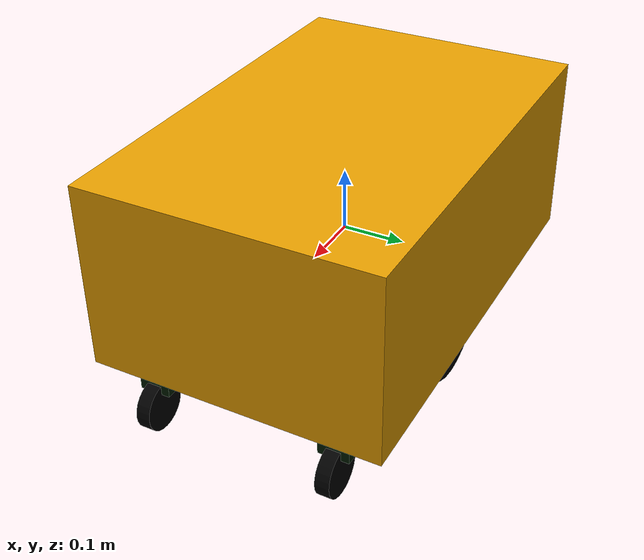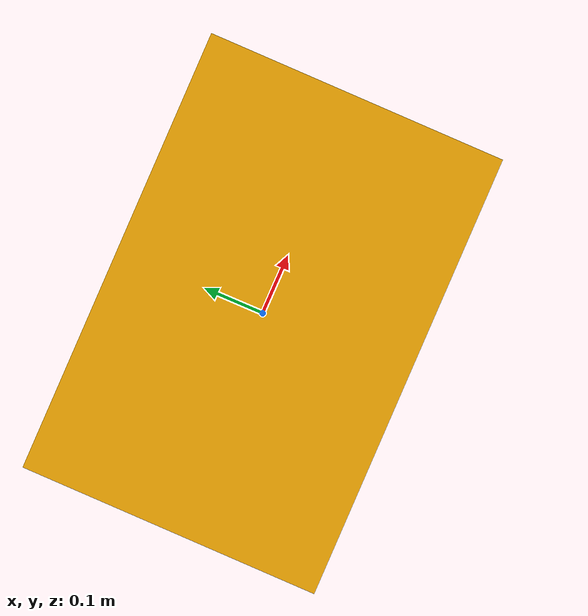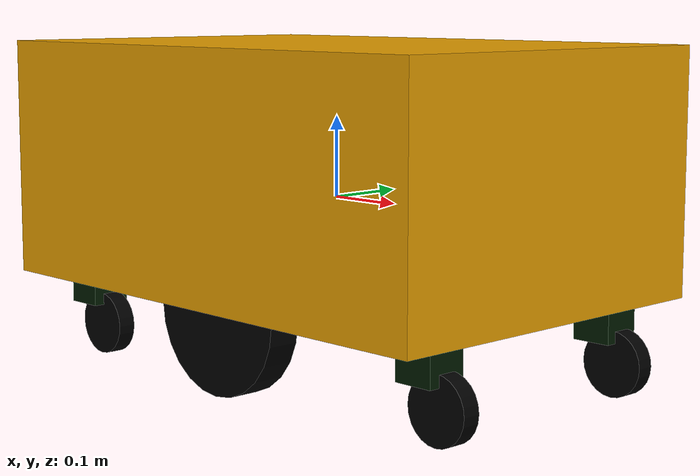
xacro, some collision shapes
<?xml version="1.0"?>
<robot xmlns:xacro="http://www.ros.org/wiki/xacro">

    <link name="base_link">
        <visual>
            <geometry>
                <mesh filename="file://$(find moborobo)/meshes/moborobo_short.stl" scale="1 1 1"/>
            </geometry>
        </visual>
        <collision>
            <geometry>
                <box size=".70 .470 .3"/>
            </geometry>
            <origin xyz="0 0 0.04" rpy="0 0 0" />
        </collision>
        <inertial>
            <mass value="20.0"/>
            <inertia ixx="0.51816" ixy="0" ixz="0" iyy="0.966664" iyz="0.0" izz="1.18484"/>
            <origin xyz="0 0 0.06" rpy="0 0 0" />
        </inertial>
    </link>

    <joint name="base_footprint_joint" type="fixed">
        <parent link="base_link"/>
        <child link="base_footprint"/>
        <origin xyz="0 0 0" rpy="0 0 0"/>
    </joint>

    <link name="base_footprint">
    </link>

    <link name="front_caster_1">
        <visual>
            <geometry>
                <box size="0.05 0.05 0.05"/>
            </geometry>
            <material name="green">
                <color rgba="0.0 0.1 0.0 1"/>
            </material>
        </visual>
        <collision>
            <geometry>
                <box size="0.05 0.05 0.05"/>
            </geometry>
        </collision>
        <inertial>
            <mass value="0.5"/>
            <inertia ixx="0.000208332" ixy="0" ixz="0" iyy="0.000208332" iyz="0.0" izz="0.000208332"/>

        </inertial>
    </link>
    <joint name="front_caster_1_joint" type="continuous">
       <axis xyz="0.0 0.0 1"/>
       <parent link="base_link"/>
       <child link="front_caster_1"/>
       <origin xyz="-0.300 0.150 -0.130" rpy="0.0 0.0 0.0"/>
    </joint>

    <link name="front_wheel_1">
        <visual>
            <geometry>
                <cylinder radius="0.04" length="0.0228"/>
            </geometry>
            <material name="black">

            </material>

        </visual>
        <collision>
            <geometry>
                <cylinder radius="0.04" length="0.0228"/>
            </geometry>
        </collision>
        <inertial>
            <mass value="0.5"/>
            <inertia ixx="0.00022166" ixy="0" ixz="0" iyy="0.00022166" iyz="0.0" izz="0.0004"/>
        </inertial>
    </link>

    <joint name="front_wheel_1_joint" type="continuous">
        <axis xyz="0.0 0.0 1"/>
        <parent link="front_caster_1"/>
        <child link="front_wheel_1"/>
        <origin xyz="0.02 0.0 -0.05" rpy="-1.5708 0.0 0.0"/>

    </joint>

    <link name="front_caster_2">
        <visual>
            <geometry>
                <box size="0.05 0.05 0.05"/>
            </geometry>
            <material name="green">
                <color rgba="0.0 0.1 0.0 1"/>
            </material>
        </visual>
        <collision>
            <geometry>
                <box size="0.05 0.05 0.05"/>
            </geometry>
        </collision>
        <inertial>
            <mass value="0.5"/>
            <inertia ixx="0.000208332" ixy="0" ixz="0" iyy="0.000208332" iyz="0.0" izz="0.000208332"/>
        </inertial>
    </link>
    <joint name="front_caster_2_joint" type="continuous">
       <axis xyz="0.0 0.0 1"/>
       <parent link="base_link"/>
       <child link="front_caster_2"/>
       <origin xyz="-0.300 -0.150 -0.130" rpy="0.0 0.0 0.0"/>
    </joint>

    <link name="front_wheel_2">
        <visual>
            <geometry>
                <cylinder radius="0.04" length="0.0228"/>
            </geometry>
            <material name="black">

            </material>

        </visual>
        <collision>
            <geometry>
                <cylinder radius="0.04" length="0.0228"/>
            </geometry>
        </collision>
        <inertial>
            <mass value="0.5"/>
            <inertia ixx="0.00022166" ixy="0" ixz="0" iyy="0.00022166" iyz="0.0" izz="0.0004"/>
        </inertial>
    </link>

    <joint name="front_wheel_2_joint" type="continuous">
        <axis xyz="0.0 0.0 1"/>
        <parent link="front_caster_2"/>
        <child link="front_wheel_2"/>
        <origin xyz="0.02 0.0 -0.05" rpy="-1.5708 0.0 0.0"/>

    </joint>

    <link name="back_caster_1">
        <visual>
            <geometry>
                <box size="0.05 0.05 0.05"/>
            </geometry>
            <material name="green">
                <color rgba="0.0 0.1 0.0 1"/>
            </material>
        </visual>
        <collision>
            <geometry>
                <box size="0.05 0.05 0.05"/>
            </geometry>
        </collision>
        <inertial>
            <mass value="0.5"/>
            <inertia ixx="0.000208332" ixy="0" ixz="0" iyy="0.000208332" iyz="0.0" izz="0.000208332"/>
        </inertial>
    </link>
    <joint name="back_caster_1_joint" type="continuous">
       <axis xyz="0.0 0.0 1"/>
       <parent link="base_link"/>
       <child link="back_caster_1"/>
       <origin xyz="0.300 0.150 -0.130" rpy="0.0 0.0 0.0"/>
    </joint>

    <link name="back_wheel_1">
        <visual>
            <geometry>
                <cylinder radius="0.04" length="0.0228"/>
            </geometry>
            <material name="black">

            </material>

        </visual>
        <collision>
            <geometry>
                <cylinder radius="0.04" length="0.0228"/>
            </geometry>
        </collision>
        <inertial>
            <mass value="0.5"/>
            <inertia ixx="0.00022166" ixy="0" ixz="0" iyy="0.00022166" iyz="0.0" izz="0.0004"/>
        </inertial>
    </link>

    <joint name="back_wheel_1_joint" type="continuous">
        <axis xyz="0.0 0.0 1"/>
        <parent link="back_caster_1"/>
        <child link="back_wheel_1"/>
        <origin xyz="0.02 0.0 -0.05" rpy="-1.5708 0.0 0.0"/>

    </joint>

    <link name="back_caster_2">
        <visual>
            <geometry>
                <box size="0.05 0.05 0.05"/>
            </geometry>
            <material name="green">
                <color rgba="0.0 0.1 0.0 1"/>
            </material>
        </visual>
        <collision>
            <geometry>
                <box size="0.05 0.05 0.05"/>
            </geometry>
        </collision>
        <inertial>
            <mass value="0.5"/>
            <inertia ixx="0.000208332" ixy="0" ixz="0" iyy="0.000208332" iyz="0.0" izz="0.000208332"/>
        </inertial>
    </link>
    <joint name="back_caster_2_joint" type="continuous">
       <axis xyz="0.0 0.0 1"/>
       <parent link="base_link"/>
       <child link="back_caster_2"/>
       <origin xyz="0.300 -0.150 -0.130" rpy="0.0 0.0 0.0"/>
    </joint>

    <link name="back_wheel_2">
        <visual>
            <geometry>
                <cylinder radius="0.04" length="0.0228"/>
            </geometry>
            <material name="black">

            </material>

        </visual>
        <collision>
            <geometry>
                <cylinder radius="0.04" length="0.0228"/>
            </geometry>
        </collision>
        <inertial>
            <mass value="0.5"/>
            <inertia ixx="0.00022166" ixy="0" ixz="0" iyy="0.00022166" iyz="0.0" izz="0.0004"/>
        </inertial>
    </link>

    <joint name="back_wheel_2_joint" type="continuous">
        <axis xyz="0.0 0.0 1"/>
        <parent link="back_caster_2"/>
        <child link="back_wheel_2"/>
        <origin xyz="0.02 0.0 -0.05" rpy="-1.5708 0.0 0.0"/>

    </joint>

<link name="right_wheel">
        <visual>
            <geometry>
                <cylinder radius="0.1" length="0.04"/>
            </geometry>
            <material name="black">
                <color rgba="0.0 0.0 0.0 1"/>
            </material>

        </visual>
        <collision>
            <geometry>
                <cylinder radius="0.1" length="0.04"/>
            </geometry>
        </collision>
        <inertial>
            <mass value="2"/>
            <inertia ixx="0.005066668" ixy="0" ixz="0" iyy="0.005066668" iyz="0.0" izz="0.01"/>        </inertial>
    </link>

    <joint name="right_wheel_joint" type="continuous">
        <axis xyz="0.0 0.0 1"/>
        <parent link="base_link"/>
        <child link="right_wheel"/>
        <origin xyz="0.0 -0.175 -0.120" rpy="-1.5708 0.0 0.0"/>

    </joint>
    <link name="left_wheel">
        <visual>
            <geometry>
                <cylinder radius="0.1" length="0.04"/>
            </geometry>
            <material name="black">
                <color rgba="0.0 0.0 0.0 1"/>
            </material>

        </visual>
        <collision>
            <geometry>
                <cylinder radius="0.1" length="0.04"/>
            </geometry>
        </collision>
        <inertial>
            <mass value="0.5"/>
            <inertia ixx="0.001266667" ixy="0" ixz="0" iyy="0.001266667" iyz="0.0" izz="0.0025"/>        </inertial>
    </link>

    <joint name="left_wheel_joint" type="continuous">
        <axis xyz="0.0 0.0 1"/>
        <parent link="base_link"/>
        <child link="left_wheel"/>
        <origin xyz="0.0 0.175 -0.120" rpy="-1.5708 0.0 0.0"/>

    </joint>

    <gazebo>
        <plugin name="joint_state_publisher"
                filename="libgazebo_ros_joint_state_publisher.so">
            <jointName>front_caster_1_joint, front_wheel_1_joint, front_caster_2_joint, front_wheel_2_joint,
                back_caster_1_joint, back_wheel_1_joint, back_caster_2_joint, back_wheel_2_joint
            </jointName>
        </plugin>
    </gazebo>

    <gazebo reference="front_caster_1">
        <material>Gazebo/White</material>
      </gazebo>
      <gazebo reference="front_wheel_1">
        <material>Gazebo/Black</material>
      </gazebo>
      <gazebo reference="front_caster_2">
        <material>Gazebo/White</material>
      </gazebo>
      <gazebo reference="front_wheel_2">
        <material>Gazebo/Black</material>
      </gazebo>
      <gazebo reference="back_caster_1">
        <material>Gazebo/White</material>
      </gazebo>
      <gazebo reference="back_wheel_1">
        <material>Gazebo/Black</material>
      </gazebo>
      <gazebo reference="back_caster_2">
        <material>Gazebo/White</material>
      </gazebo>
      <gazebo reference="back_wheel_2">
        <material>Gazebo/Black</material>
      </gazebo>
      <gazebo reference="left_wheel">
        <material>Gazebo/Black</material>
      </gazebo>
      <gazebo reference="right_wheel">
        <material>Gazebo/Black</material>
      </gazebo>

    </robot>
